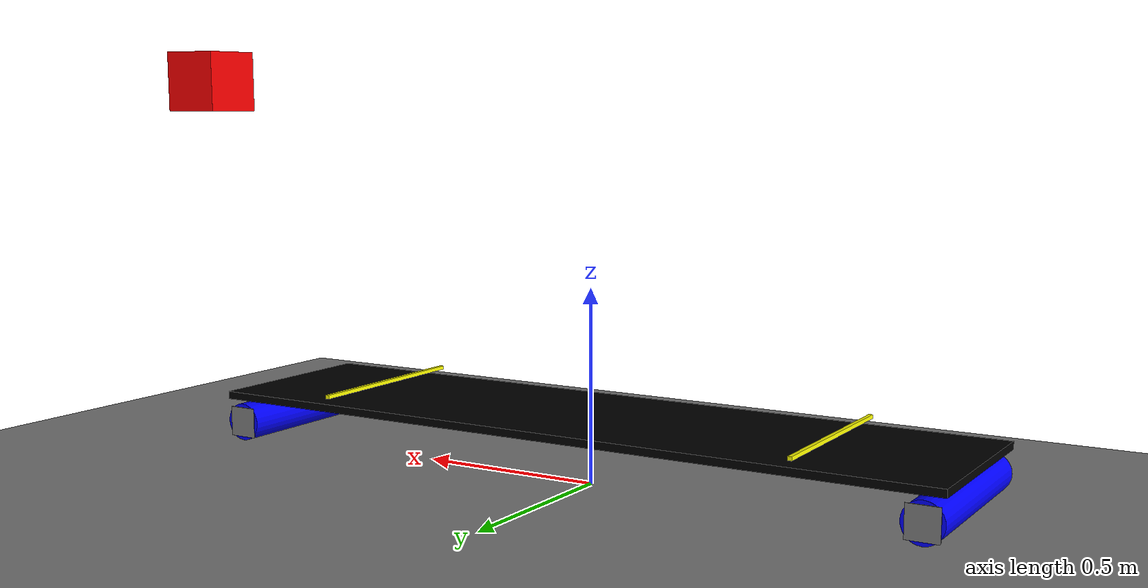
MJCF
<mujoco>
    <worldbody>
        <body name="floor">
            <geom type="plane" size="2 2 0.01" />
        </body>
    </worldbody>

    <worldbody>
        <body name="conveyor">
            <body name="roller1" euler="90 0 0" pos="0.95 0 0.1" >
                <geom type="cylinder" size="0.05 0.25" rgba="0 0 1 1" />
                <joint name="roller1_joint" type="hinge" damping="0.01" />
                <geom type="box" size="0.04 0.04 0.001" pos="0 0 -0.251" />
                <site name="site1" type="sphere" rgba="1 0 0 1" size="0.01" pos="0 0.05 0" />
            </body>

            <body name="roller2" euler="90 0 0" pos="-0.95 0 0.1" >
                <geom type="cylinder" size="0.05 0.25" rgba="0 0 1 1" />
                <joint name="roller2_joint" type="hinge" damping="0.01" />
                <geom type="box" size="0.04 0.04 0.001" pos="0 0 -0.251" />
            </body>

            <body name="belt" pos="0 0 0.17" >
                <geom type="box" size="1 0.25 0.01" rgba="0 0 0 1" friction="0.2 0.005 0.0001" />
                <site name="belt_motion_touch_sensor_site" pos="0 0 0.001" type="box" size="1 0.25 0.01" rgba="0 0 0 0" />

                <site name="right_light_sensor" type="box" pos="-0.65 0 0.03" size="0.005 0.25 0.005" euler="0 90 0" rgba="1 1 0 1" />

                <site name="left_light_sensor" type="box" pos="0.65 0 0.03" size="0.005 0.25 0.005" euler="0 -90 0" rgba="1 1 0 1" />
            </body>
        </body>

    </worldbody>

    <worldbody>
        <body name="box" pos="0 1.275 1" euler="0 0 0" >
            <geom type="box" size="0.05 0.05 0.05" rgba="1 0 0 1" friction="0.2 0.005 0.0001" mass="0.1" />
            <joint name="box_joint" type="free" damping="0.2" />
            <site name="box_site" type="box" size="0.05 0.05 0.05" rgba="1 0 0 1" />
        </body>
    </worldbody>

    <equality>
        <joint joint1="roller1_joint" joint2="roller2_joint" />
    </equality>

    <actuator>
        <velocity name="roller_vel" joint="roller1_joint" ctrlrange="-100 100" />
        <velocity name="box_vel" joint="box_joint" gear="1 0 0 0 0 0" ctrlrange="-20 20" />
    </actuator>

    <sensor>
        <velocimeter name="conv_velocimeter" site="site1" />
        <touch name="conv_touch" site="belt_motion_touch_sensor_site"/>
        <touch name="conv_light_sensor_r" site="right_light_sensor"  />
        <touch name="conv_light_sensor_l" site="left_light_sensor"  />
    </sensor>

</mujoco>
